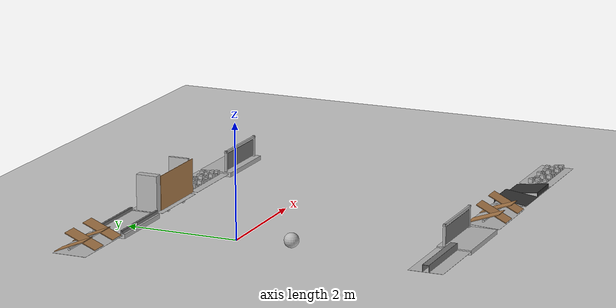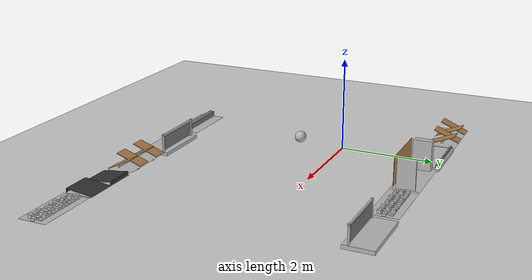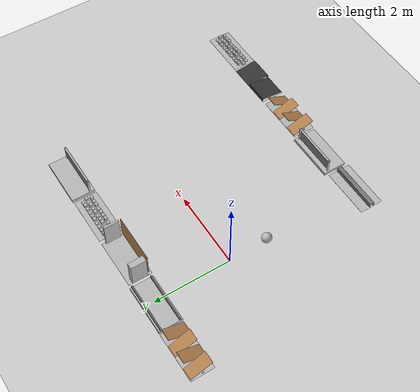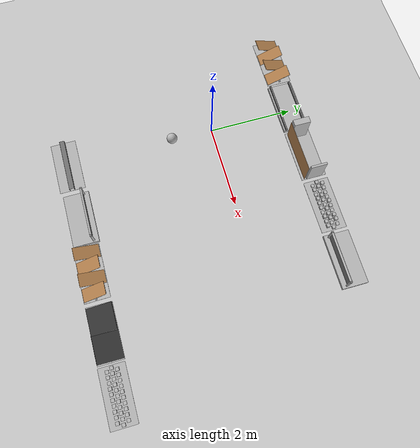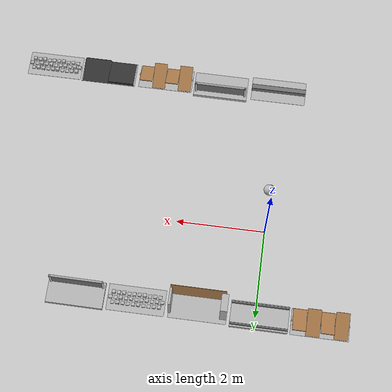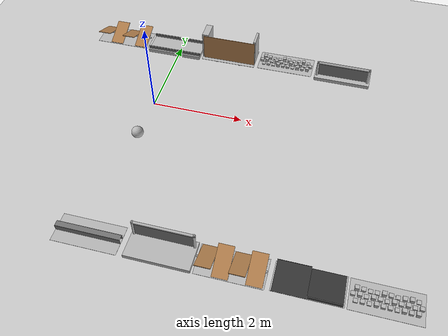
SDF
<sdf version="1.4">
 <world name="default">
  <light name="sun" type="directional">
   <pose>0 0 10 0 -0 0</pose>
   <diffuse>0.8 0.8 0.8 1</diffuse>
   <specular>0.2 0.2 0.2 1</specular>
   <attenuation>
    <range>1000</range>
    <constant>0.9</constant>
    <linear>0.01</linear>
    <quadratic>0.001</quadratic>
   </attenuation>
   <direction>-0.5 0.1 -0.9</direction>
  </light>
  <model name="ground_plane">
   <static>1</static>
   <link name="link">
    <collision name="collision">
     <geometry><plane><normal>0 0 1</normal><size>100 100</size></plane></geometry>
     <surface><friction><ode><mu>100</mu><mu2>50</mu2></ode></friction></surface>
    </collision>
    <visual name="visual">
     <cast_shadows>0</cast_shadows>
     <geometry><plane><normal>0 0 1</normal><size>100 100</size></plane></geometry>
     <material>
      <script><uri>file://media/materials/scripts/gazebo.material</uri><name>Gazebo/Grey</name></script>
     </material>
    </visual>
    <velocity_decay><linear>0</linear><angular>0</angular></velocity_decay>
   </link>
  </model>
  <physics type="ode">
   <max_step_size>0.001</max_step_size>
   <real_time_factor>1</real_time_factor>
   <real_time_update_rate>1000</real_time_update_rate>
   <gravity>0 0 -9.8</gravity>
  </physics>
  <scene><ambient>0.4 0.4 0.4 1</ambient><background>0.7 0.7 0.7 1</background><shadows>1</shadows></scene>
  <spherical_coordinates>
   <surface_model>EARTH_WGS84</surface_model>
   <latitude_deg>0</latitude_deg>
   <longitude_deg>0</longitude_deg>
   <elevation>0</elevation>
   <heading_deg>0</heading_deg>
  </spherical_coordinates>
  <model name="frc2016_roughterrain">
   <static>1</static>
   <link name="link">
    <visual name="platform">
     <pose>0 0 0.08269 0 -0 0</pose>
     <geometry><box><size>1.27 0.5969 0.003175</size></box></geometry>
    </visual>
    <collision name="platform">
     <pose>0 0 0.08269 0 -0 0</pose>
     <geometry><box><size>1.27 0.5969 0.003175</size></box></geometry>
    </collision>
    <visual name="row1_block1_sm">
     <pose>0.51435 0.1143 0.09698 0 -0 0</pose>
     <geometry><box><size>0.0762 0.0762 0.0254</size></box></geometry>
    </visual>
    <collision name="row1_block1_sm">
     <pose>0.51435 0.1143 0.09698 0 -0 0</pose>
     <geometry><box><size>0.0762 0.0762 0.0254</size></box></geometry>
    </collision>
    <visual name="row1_block2_lg">
     <pose>0.40005 0.1143 0.12238 0 -0 0</pose>
     <geometry><box><size>0.0762 0.0762 0.0762</size></box></geometry>
    </visual>
    <collision name="row1_block2_lg">
     <pose>0.40005 0.1143 0.12238 0 -0 0</pose>
     <geometry><box><size>0.0762 0.0762 0.0762</size></box></geometry>
    </collision>
    <visual name="row1_block3_md">
     <pose>0.28575 0.1143 0.10968 0 -0 0</pose>
     <geometry><box><size>0.0762 0.0762 0.0508</size></box></geometry>
    </visual>
    <collision name="row1_block3_md">
     <pose>0.28575 0.1143 0.10968 0 -0 0</pose>
     <geometry><box><size>0.0762 0.0762 0.0508</size></box></geometry>
    </collision>
    <visual name="row1_block4_sm">
     <pose>0.17145 0.1143 0.09698 0 -0 0</pose>
     <geometry><box><size>0.0762 0.0762 0.0254</size></box></geometry>
    </visual>
    <collision name="row1_block4_sm">
     <pose>0.17145 0.1143 0.09698 0 -0 0</pose>
     <geometry><box><size>0.0762 0.0762 0.0254</size></box></geometry>
    </collision>
    <visual name="row1_block5_md">
     <pose>0.05715 0.1143 0.10968 0 -0 0</pose>
     <geometry><box><size>0.0762 0.0762 0.0508</size></box></geometry>
    </visual>
    <collision name="row1_block5_md">
     <pose>0.05715 0.1143 0.10968 0 -0 0</pose>
     <geometry><box><size>0.0762 0.0762 0.0508</size></box></geometry>
    </collision>
    <visual name="row1_block6_lg">
     <pose>-0.05715 0.1143 0.12238 0 -0 0</pose>
     <geometry><box><size>0.0762 0.0762 0.0762</size></box></geometry>
    </visual>
    <collision name="row1_block6_lg">
     <pose>-0.05715 0.1143 0.12238 0 -0 0</pose>
     <geometry><box><size>0.0762 0.0762 0.0762</size></box></geometry>
    </collision>
    <visual name="row1_block7_sm">
     <pose>-0.17145 0.1143 0.09698 0 -0 0</pose>
     <geometry><box><size>0.0762 0.0762 0.0254</size></box></geometry>
    </visual>
    <collision name="row1_block7_sm">
     <pose>-0.17145 0.1143 0.09698 0 -0 0</pose>
     <geometry><box><size>0.0762 0.0762 0.0254</size></box></geometry>
    </collision>
    <visual name="row1_block8_sm">
     <pose>-0.28575 0.1143 0.09698 0 -0 0</pose>
     <geometry><box><size>0.0762 0.0762 0.0254</size></box></geometry>
    </visual>
    <collision name="row1_block8_sm">
     <pose>-0.28575 0.1143 0.09698 0 -0 0</pose>
     <geometry><box><size>0.0762 0.0762 0.0254</size></box></geometry>
    </collision>
    <visual name="row1_block9_md">
     <pose>-0.40005 0.1143 0.10968 0 -0 0</pose>
     <geometry><box><size>0.0762 0.0762 0.0508</size></box></geometry>
    </visual>
    <collision name="row1_block9_md">
     <pose>-0.40005 0.1143 0.10968 0 -0 0</pose>
     <geometry><box><size>0.0762 0.0762 0.0508</size></box></geometry>
    </collision>
    <visual name="row1_block10_lg">
     <pose>-0.51435 0.1143 0.12238 0 -0 0</pose>
     <geometry><box><size>0.0762 0.0762 0.0762</size></box></geometry>
    </visual>
    <collision name="row1_block10_lg">
     <pose>-0.51435 0.1143 0.12238 0 -0 0</pose>
     <geometry><box><size>0.0762 0.0762 0.0762</size></box></geometry>
    </collision>
    <visual name="row2_block1_md">
     <pose>0.5715 0 0.10968 0 -0 0</pose>
     <geometry><box><size>0.0762 0.0762 0.0508</size></box></geometry>
    </visual>
    <collision name="row2_block1_md">
     <pose>0.5715 0 0.10968 0 -0 0</pose>
     <geometry><box><size>0.0762 0.0762 0.0508</size></box></geometry>
    </collision>
    <visual name="row2_block2_sm">
     <pose>0.4572 0 0.09698 0 -0 0</pose>
     <geometry><box><size>0.0762 0.0762 0.0254</size></box></geometry>
    </visual>
    <collision name="row2_block2_sm">
     <pose>0.4572 0 0.09698 0 -0 0</pose>
     <geometry><box><size>0.0762 0.0762 0.0254</size></box></geometry>
    </collision>
    <visual name="row2_block3_lg">
     <pose>0.3429 0 0.12238 0 -0 0</pose>
     <geometry><box><size>0.0762 0.0762 0.0762</size></box></geometry>
    </visual>
    <collision name="row2_block3_lg">
     <pose>0.3429 0 0.12238 0 -0 0</pose>
     <geometry><box><size>0.0762 0.0762 0.0762</size></box></geometry>
    </collision>
    <visual name="row2_block4_md">
     <pose>0.2286 0 0.10968 0 -0 0</pose>
     <geometry><box><size>0.0762 0.0762 0.0508</size></box></geometry>
    </visual>
    <collision name="row2_block4_md">
     <pose>0.2286 0 0.10968 0 -0 0</pose>
     <geometry><box><size>0.0762 0.0762 0.0508</size></box></geometry>
    </collision>
    <visual name="row2_block5_lg">
     <pose>0.1143 0 0.12238 0 -0 0</pose>
     <geometry><box><size>0.0762 0.0762 0.0762</size></box></geometry>
    </visual>
    <collision name="row2_block5_lg">
     <pose>0.1143 0 0.12238 0 -0 0</pose>
     <geometry><box><size>0.0762 0.0762 0.0762</size></box></geometry>
    </collision>
    <visual name="row2_block6_sm">
     <pose>0 0 0.09698 0 -0 0</pose>
     <geometry><box><size>0.0762 0.0762 0.0254</size></box></geometry>
    </visual>
    <collision name="row2_block6_sm">
     <pose>0 0 0.09698 0 -0 0</pose>
     <geometry><box><size>0.0762 0.0762 0.0254</size></box></geometry>
    </collision>
    <visual name="row2_block7_md">
     <pose>-0.1143 0 0.10968 0 -0 0</pose>
     <geometry><box><size>0.0762 0.0762 0.0508</size></box></geometry>
    </visual>
    <collision name="row2_block7_md">
     <pose>-0.1143 0 0.10968 0 -0 0</pose>
     <geometry><box><size>0.0762 0.0762 0.0508</size></box></geometry>
    </collision>
    <visual name="row2_block8_lg">
     <pose>-0.2286 0 0.12238 0 -0 0</pose>
     <geometry><box><size>0.0762 0.0762 0.0762</size></box></geometry>
    </visual>
    <collision name="row2_block8_lg">
     <pose>-0.2286 0 0.12238 0 -0 0</pose>
     <geometry><box><size>0.0762 0.0762 0.0762</size></box></geometry>
    </collision>
    <visual name="row2_block9_sm">
     <pose>-0.3429 0 0.09698 0 -0 0</pose>
     <geometry><box><size>0.0762 0.0762 0.0254</size></box></geometry>
    </visual>
    <collision name="row2_block9_sm">
     <pose>-0.3429 0 0.09698 0 -0 0</pose>
     <geometry><box><size>0.0762 0.0762 0.0254</size></box></geometry>
    </collision>
    <visual name="row2_block10_lg">
     <pose>-0.4572 0 0.12238 0 -0 0</pose>
     <geometry><box><size>0.0762 0.0762 0.0762</size></box></geometry>
    </visual>
    <collision name="row2_block10_lg">
     <pose>-0.4572 0 0.12238 0 -0 0</pose>
     <geometry><box><size>0.0762 0.0762 0.0762</size></box></geometry>
    </collision>
    <visual name="row2_block11_md">
     <pose>-0.5715 0 0.10968 0 -0 0</pose>
     <geometry><box><size>0.0762 0.0762 0.0508</size></box></geometry>
    </visual>
    <collision name="row2_block11_md">
     <pose>-0.5715 0 0.10968 0 -0 0</pose>
     <geometry><box><size>0.0762 0.0762 0.0508</size></box></geometry>
    </collision>
    <visual name="row3_block1_lg">
     <pose>0.51435 -0.1143 0.12238 0 -0 0</pose>
     <geometry><box><size>0.0762 0.0762 0.0762</size></box></geometry>
    </visual>
    <collision name="row3_block1_lg">
     <pose>0.51435 -0.1143 0.12238 0 -0 0</pose>
     <geometry><box><size>0.0762 0.0762 0.0762</size></box></geometry>
    </collision>
    <visual name="row3_block2_md">
     <pose>0.40005 -0.1143 0.10968 0 -0 0</pose>
     <geometry><box><size>0.0762 0.0762 0.0508</size></box></geometry>
    </visual>
    <collision name="row3_block2_md">
     <pose>0.40005 -0.1143 0.10968 0 -0 0</pose>
     <geometry><box><size>0.0762 0.0762 0.0508</size></box></geometry>
    </collision>
    <visual name="row3_block3_lg">
     <pose>0.28575 -0.1143 0.12238 0 -0 0</pose>
     <geometry><box><size>0.0762 0.0762 0.0762</size></box></geometry>
    </visual>
    <collision name="row3_block3_lg">
     <pose>0.28575 -0.1143 0.12238 0 -0 0</pose>
     <geometry><box><size>0.0762 0.0762 0.0762</size></box></geometry>
    </collision>
    <visual name="row3_block4_sm">
     <pose>0.17145 -0.1143 0.09698 0 -0 0</pose>
     <geometry><box><size>0.0762 0.0762 0.0254</size></box></geometry>
    </visual>
    <collision name="row3_block4_sm">
     <pose>0.17145 -0.1143 0.09698 0 -0 0</pose>
     <geometry><box><size>0.0762 0.0762 0.0254</size></box></geometry>
    </collision>
    <visual name="row3_block5_md">
     <pose>0.05715 -0.1143 0.10968 0 -0 0</pose>
     <geometry><box><size>0.0762 0.0762 0.0508</size></box></geometry>
    </visual>
    <collision name="row3_block5_md">
     <pose>0.05715 -0.1143 0.10968 0 -0 0</pose>
     <geometry><box><size>0.0762 0.0762 0.0508</size></box></geometry>
    </collision>
    <visual name="row3_block6_md">
     <pose>-0.05715 -0.1143 0.10968 0 -0 0</pose>
     <geometry><box><size>0.0762 0.0762 0.0508</size></box></geometry>
    </visual>
    <collision name="row3_block6_md">
     <pose>-0.05715 -0.1143 0.10968 0 -0 0</pose>
     <geometry><box><size>0.0762 0.0762 0.0508</size></box></geometry>
    </collision>
    <visual name="row3_block7_lg">
     <pose>-0.17145 -0.1143 0.12238 0 -0 0</pose>
     <geometry><box><size>0.0762 0.0762 0.0762</size></box></geometry>
    </visual>
    <collision name="row3_block7_lg">
     <pose>-0.17145 -0.1143 0.12238 0 -0 0</pose>
     <geometry><box><size>0.0762 0.0762 0.0762</size></box></geometry>
    </collision>
    <visual name="row3_block8_sm">
     <pose>-0.28575 -0.1143 0.09698 0 -0 0</pose>
     <geometry><box><size>0.0762 0.0762 0.0254</size></box></geometry>
    </visual>
    <collision name="row3_block8_sm">
     <pose>-0.28575 -0.1143 0.09698 0 -0 0</pose>
     <geometry><box><size>0.0762 0.0762 0.0254</size></box></geometry>
    </collision>
    <visual name="row3_block9_md">
     <pose>-0.40005 -0.1143 0.10968 0 -0 0</pose>
     <geometry><box><size>0.0762 0.0762 0.0508</size></box></geometry>
    </visual>
    <collision name="row3_block9_md">
     <pose>-0.40005 -0.1143 0.10968 0 -0 0</pose>
     <geometry><box><size>0.0762 0.0762 0.0508</size></box></geometry>
    </collision>
    <visual name="row3_block10_sm">
     <pose>-0.51435 -0.1143 0.09698 0 -0 0</pose>
     <geometry><box><size>0.0762 0.0762 0.0254</size></box></geometry>
    </visual>
    <collision name="row3_block10_sm">
     <pose>-0.51435 -0.1143 0.09698 0 -0 0</pose>
     <geometry><box><size>0.0762 0.0762 0.0254</size></box></geometry>
    </collision>
    <velocity_decay><linear>0</linear><angular>0</angular></velocity_decay>
   </link>
   <pose>5.39148 -3.56537 0.010395 0 -0 0</pose>
  </model>
  <model name="frc2016_ramparts">
   <static>1</static>
   <link name="link">
    <visual name="platform">
     <pose>0 0 0.06967 0 -0 0</pose>
     <geometry><box><size>1.27 0.5969 0.003175</size></box></geometry>
    </visual>
    <collision name="platform">
     <pose>0 0 0.06967 0 -0 0</pose>
     <geometry><box><size>1.27 0.5969 0.003175</size></box></geometry>
    </collision>
    <visual name="ramp1">
     <pose>0.30472 0.00588 0.1109 -0.13 0 0</pose>
     <geometry><box><size>0.60957 0.588891 0.00462</size></box></geometry>
     <material><ambient>0.2 0.2 0.2 1</ambient><diffuse>0.2 0.2 0.2 1</diffuse></material>
    </visual>
    <collision name="ramp1">
     <pose>0.30472 0.00588 0.1109 -0.13 0 0</pose>
     <geometry><box><size>0.60957 0.588891 0.00462</size></box></geometry>
    </collision>
    <visual name="up1">
     <pose>0.30472 -0.28806 0.11072 0 -0 0</pose>
     <geometry><box><size>0.60957 0.00462 0.07872</size></box></geometry>
     <material><ambient>0.2 0.2 0.2 1</ambient><diffuse>0.2 0.2 0.2 1</diffuse></material>
    </visual>
    <collision name="up1">
     <pose>0.30472 -0.28806 0.11072 0 -0 0</pose>
     <geometry><box><size>0.60957 0.00462 0.07872</size></box></geometry>
    </collision>
    <visual name="ramp2">
     <pose>-0.30472 -0.00619 0.1109 0.13 -0 0</pose>
     <geometry><box><size>0.60957 0.588891 0.00462</size></box></geometry>
     <material><ambient>0.2 0.2 0.2 1</ambient><diffuse>0.2 0.2 0.2 1</diffuse></material>
    </visual>
    <collision name="ramp2">
     <pose>-0.30472 -0.00619 0.1109 0.13 -0 0</pose>
     <geometry><box><size>0.60957 0.588891 0.00462</size></box></geometry>
    </collision>
    <visual name="up2">
     <pose>-0.30472 0.28806 0.11072 0 -0 0</pose>
     <geometry><box><size>0.60957 0.00462 0.07872</size></box></geometry>
     <material><ambient>0.2 0.2 0.2 1</ambient><diffuse>0.2 0.2 0.2 1</diffuse></material>
    </visual>
    <collision name="up2">
     <pose>-0.30472 0.28806 0.11072 0 -0 0</pose>
     <geometry><box><size>0.60957 0.00462 0.07872</size></box></geometry>
    </collision>
    <velocity_decay><linear>0</linear><angular>0</angular></velocity_decay>
   </link>
   <pose>4.0838 -3.55444 0.015468 0 -0 0</pose>
  </model>
  <model name="frc2016_lowbar">
   <link name="base">
    <inertial>
     <mass>50</mass>
     <inertia>
      <ixx>0.035543</ixx>
      <ixy>0</ixy>
      <ixz>0</ixz>
      <iyy>0.134412</iyy>
      <iyz>0</iyz>
      <izz>0.165376</izz>
     </inertia>
    </inertial>
    <visual name="platform">
     <pose>0 0 0.039065 0 -0 0</pose>
     <geometry><box><size>1.26 0.5996 0.07813</size></box></geometry>
    </visual>
    <collision name="platform">
     <pose>0 0 0.039065 0 -0 0</pose>
     <geometry><box><size>1.27 0.6096 0.07813</size></box></geometry>
    </collision>
    <visual name="right_column">
     <pose>-0.57845 -0.18464 0.26863 0 -0 0</pose>
     <geometry><cylinder><radius>0.0254</radius><length>0.381</length></cylinder></geometry>
    </visual>
    <collision name="right_column">
     <pose>-0.57845 -0.18464 0.26863 0 -0 0</pose>
     <geometry><cylinder><radius>0.0254</radius><length>0.381</length></cylinder></geometry>
    </collision>
    <visual name="left_column">
     <pose>0.57845 -0.18464 0.26863 0 -0 0</pose>
     <geometry><cylinder><radius>0.0254</radius><length>0.381</length></cylinder></geometry>
    </visual>
    <collision name="left_column">
     <pose>0.57845 -0.18464 0.26863 0 -0 0</pose>
     <geometry><cylinder><radius>0.0254</radius><length>0.381</length></cylinder></geometry>
    </collision>
    <visual name="horizontal">
     <pose>0 -0.18464 0.43556 0 1.5707 0</pose>
     <geometry><cylinder><radius>0.0254</radius><length>1.2018</length></cylinder></geometry>
    </visual>
    <collision name="horizontal">
     <pose>0 -0.18464 0.43556 0 1.5707 0</pose>
     <geometry><cylinder><radius>0.0254</radius><length>1.2018</length></cylinder></geometry>
    </collision>
    <velocity_decay><linear>0</linear><angular>0</angular></velocity_decay>
   </link>
   <link name="wall">
    <pose>0 -0.1778 0.24323 0 -0 0</pose>
    <inertial>
     <mass>1</mass>
     <inertia>
      <ixx>0.00774528</ixx>
      <ixy>0</ixy>
      <ixz>0</ixz>
      <iyy>0.116613</iyy>
      <iyz>0</iyz>
      <izz>0.108874</izz>
     </inertia>
    </inertial>
    <visual name="visual">
     <geometry><box><size>1.1176 0.00635 0.3</size></box></geometry>
     <material><ambient>0.46 0.46 0.46 1</ambient><diffuse>0.46 0.46 0.46 1</diffuse></material>
    </visual>
    <collision name="collision"><geometry><box><size>1.143 0.00635 0.3</size></box></geometry></collision>
    <velocity_decay><linear>0</linear><angular>0</angular></velocity_decay>
   </link>
   <joint name="bar_joint" type="revolute">
    <pose>0 0 0.36378 0 -0 0</pose>
    <parent>base</parent>
    <child>wall</child>
    <axis><xyz>1 0 0</xyz><limit><lower>-1.5707</lower><upper>1.5707</upper></limit></axis>
   </joint>
   <pose>3.95335 1.97511 0.020855 -4.7e-05 -5.29396e-23 -0.005504</pose>
   <static>0</static>
  </model>
  <model name="frc2016_lowbar_0">
   <link name="base">
    <inertial>
     <mass>50</mass>
     <inertia>
      <ixx>0.035543</ixx>
      <ixy>0</ixy>
      <ixz>0</ixz>
      <iyy>0.134412</iyy>
      <iyz>0</iyz>
      <izz>0.165376</izz>
     </inertia>
    </inertial>
    <visual name="platform">
     <pose>0 0 0.039065 0 -0 0</pose>
     <geometry><box><size>1.26 0.5996 0.07813</size></box></geometry>
    </visual>
    <collision name="platform">
     <pose>0 0 0.039065 0 -0 0</pose>
     <geometry><box><size>1.27 0.6096 0.07813</size></box></geometry>
    </collision>
    <visual name="right_column">
     <pose>-0.57845 -0.18464 0.26863 0 -0 0</pose>
     <geometry><cylinder><radius>0.0254</radius><length>0.381</length></cylinder></geometry>
    </visual>
    <collision name="right_column">
     <pose>-0.57845 -0.18464 0.26863 0 -0 0</pose>
     <geometry><cylinder><radius>0.0254</radius><length>0.381</length></cylinder></geometry>
    </collision>
    <visual name="left_column">
     <pose>0.57845 -0.18464 0.26863 0 -0 0</pose>
     <geometry><cylinder><radius>0.0254</radius><length>0.381</length></cylinder></geometry>
    </visual>
    <collision name="left_column">
     <pose>0.57845 -0.18464 0.26863 0 -0 0</pose>
     <geometry><cylinder><radius>0.0254</radius><length>0.381</length></cylinder></geometry>
    </collision>
    <visual name="horizontal">
     <pose>0 -0.18464 0.43556 0 1.5707 0</pose>
     <geometry><cylinder><radius>0.0254</radius><length>1.2018</length></cylinder></geometry>
    </visual>
    <collision name="horizontal">
     <pose>0 -0.18464 0.43556 0 1.5707 0</pose>
     <geometry><cylinder><radius>0.0254</radius><length>1.2018</length></cylinder></geometry>
    </collision>
    <velocity_decay><linear>0</linear><angular>0</angular></velocity_decay>
   </link>
   <link name="wall">
    <pose>0 -0.1778 0.24323 0 -0 0</pose>
    <inertial>
     <mass>1</mass>
     <inertia>
      <ixx>0.00774528</ixx>
      <ixy>0</ixy>
      <ixz>0</ixz>
      <iyy>0.116613</iyy>
      <iyz>0</iyz>
      <izz>0.108874</izz>
     </inertia>
    </inertial>
    <visual name="visual">
     <geometry><box><size>1.1176 0.00635 0.3</size></box></geometry>
     <material><ambient>0.46 0.46 0.46 1</ambient><diffuse>0.46 0.46 0.46 1</diffuse></material>
    </visual>
    <collision name="collision"><geometry><box><size>1.143 0.00635 0.3</size></box></geometry></collision>
    <velocity_decay><linear>0</linear><angular>0</angular></velocity_decay>
   </link>
   <joint name="bar_joint" type="revolute">
    <pose>0 0 0.36378 0 -0 0</pose>
    <parent>base</parent>
    <child>wall</child>
    <axis><xyz>1 0 0</xyz><limit><lower>-1.5707</lower><upper>1.5707</upper></limit></axis>
   </joint>
   <pose>1.40485 -3.53672 -6e-06 9e-06 1.4e-05 3.13948</pose>
   <static>0</static>
  </model>
  <model name="frc2016_ball">
   <pose>0 -1 0.127 0 -0 0</pose>
   <link name="link">
    <inertial>
     <mass>0.213</mass>
     <inertia>
      <ixx>0.00322667</ixx>
      <ixy>0</ixy>
      <ixz>0</ixz>
      <iyy>0.00322667</iyy>
      <iyz>0</iyz>
      <izz>0.00322667</izz>
     </inertia>
    </inertial>
    <visual name="visual"><geometry><sphere><radius>0.127</radius></sphere></geometry></visual>
    <collision name="collision">
     <geometry><sphere><radius>0.127</radius></sphere></geometry>
     <surface>
      <bounce><restitution_coefficient>0.15937</restitution_coefficient><threshold>0</threshold></bounce>
      <contact><ode><max_vel>100</max_vel><min_depth>0.001</min_depth></ode></contact>
     </surface>
    </collision>
    <velocity_decay><linear>0</linear><angular>0</angular></velocity_decay>
   </link>
   <static>0</static>
  </model>
  <model name="frc2016_chevaldefrise">
   <link name="base">
    <inertial>
     <mass>10</mass>
     <pose>0 0 0.15672 0 -0 0</pose>
     <inertia><ixx>0.380221</ixx><ixy>0</ixy><ixz>0</ixz><iyy>1.43365</iyy><iyz>0</iyz><izz>1.64745</izz></inertia>
    </inertial>
    <visual name="platform">
     <pose>0 0 0.06968 0 -0 0</pose>
     <geometry><box><size>1.27 0.5969 0.003175</size></box></geometry>
    </visual>
    <collision name="platform">
     <pose>0 0 0.06968 0 -0 0</pose>
     <geometry><box><size>1.27 0.5969 0.003175</size></box></geometry>
    </collision>
    <visual name="bar">
     <pose>0 0 0.16855 0 1.5707 0</pose>
     <geometry><cylinder><radius>0.02108</radius><length>1.273</length></cylinder></geometry>
    </visual>
    <collision name="bar">
     <pose>0 0 0.16855 0 1.5707 0</pose>
     <geometry><cylinder><radius>0.02108</radius><length>1.27</length></cylinder></geometry>
    </collision>
    <visual name="castor1">
     <pose>-0.45653 -0.16581 0.03175 0 -0 0</pose>
     <geometry><sphere><radius>0.03175</radius></sphere></geometry>
    </visual>
    <collision name="castor1">
     <pose>-0.45653 -0.16581 0.03175 0 -0 0</pose>
     <geometry><sphere><radius>0.03175</radius></sphere></geometry>
    </collision>
    <visual name="castor2">
     <pose>-0.27855 0.21408 0.03175 0 -0 0</pose>
     <geometry><sphere><radius>0.03175</radius></sphere></geometry>
    </visual>
    <collision name="castor2">
     <pose>-0.27855 0.21408 0.03175 0 -0 0</pose>
     <geometry><sphere><radius>0.03175</radius></sphere></geometry>
    </collision>
    <visual name="castor3">
     <pose>0.28191 0.21419 0.03175 0 -0 0</pose>
     <geometry><sphere><radius>0.03175</radius></sphere></geometry>
    </visual>
    <collision name="castor3">
     <pose>0.28191 0.21419 0.03175 0 -0 0</pose>
     <geometry><sphere><radius>0.03175</radius></sphere></geometry>
    </collision>
    <visual name="castor4">
     <pose>0.45965 -0.16602 0.03175 0 -0 0</pose>
     <geometry><sphere><radius>0.03175</radius></sphere></geometry>
    </visual>
    <collision name="castor4">
     <pose>0.45965 -0.16602 0.03175 0 -0 0</pose>
     <geometry><sphere><radius>0.03175</radius></sphere></geometry>
    </collision>
    <velocity_decay><linear>0</linear><angular>0</angular></velocity_decay>
   </link>
   <link name="slant1">
    <pose>-0.4572 0.01307 0.1997 -0.39732 0 0</pose>
    <inertial>
     <pose>0 0.1 0 0 -0 0</pose>
     <mass>2</mass>
     <inertia>
      <ixx>0.0606857</ixx>
      <ixy>0</ixy>
      <ixz>0</ixz>
      <iyy>0.0148723</iyy>
      <iyz>0</iyz>
      <izz>0.0755042</izz>
     </inertia>
    </inertial>
    <visual name="visual">
     <geometry><box><size>0.29845 0.593285 0.0127</size></box></geometry>
     <material><script><name>Gazebo/WoodFloor</name><uri>__default__</uri></script></material>
    </visual>
    <collision name="collision"><geometry><box><size>0.29845 0.593285 0.0127</size></box></geometry></collision>
    <velocity_decay><linear>0</linear><angular>0</angular></velocity_decay>
   </link>
   <link name="slant2">
    <pose>-0.1524 -0.01307 0.1997 0.39732 -0 0</pose>
    <inertial>
     <mass>2</mass>
     <pose>0 -0.1 0 0 -0 0</pose>
     <inertia>
      <ixx>0.0606857</ixx>
      <ixy>0</ixy>
      <ixz>0</ixz>
      <iyy>0.0148723</iyy>
      <iyz>0</iyz>
      <izz>0.0755042</izz>
     </inertia>
    </inertial>
    <visual name="visual">
     <geometry><box><size>0.29845 0.593285 0.0127</size></box></geometry>
     <material><script><name>Gazebo/WoodFloor</name><uri>__default__</uri></script></material>
    </visual>
    <collision name="collision"><geometry><box><size>0.29845 0.593285 0.0127</size></box></geometry></collision>
    <velocity_decay><linear>0</linear><angular>0</angular></velocity_decay>
   </link>
   <link name="slant3">
    <pose>0.1524 0.01307 0.1997 -0.39732 0 0</pose>
    <inertial>
     <pose>0 0.1 0 0 -0 0</pose>
     <mass>2</mass>
     <inertia>
      <ixx>0.0606857</ixx>
      <ixy>0</ixy>
      <ixz>0</ixz>
      <iyy>0.0148723</iyy>
      <iyz>0</iyz>
      <izz>0.0755042</izz>
     </inertia>
    </inertial>
    <visual name="visual">
     <geometry><box><size>0.29845 0.593285 0.0127</size></box></geometry>
     <material><script><name>Gazebo/WoodFloor</name><uri>__default__</uri></script></material>
    </visual>
    <collision name="collision"><geometry><box><size>0.29845 0.593285 0.0127</size></box></geometry></collision>
    <velocity_decay><linear>0</linear><angular>0</angular></velocity_decay>
   </link>
   <link name="slant4">
    <pose>0.4572 -0.01307 0.1997 0.39732 -0 0</pose>
    <inertial>
     <pose>0 -0.1 0 0 -0 0</pose>
     <mass>2</mass>
     <inertia>
      <ixx>0.0606857</ixx>
      <ixy>0</ixy>
      <ixz>0</ixz>
      <iyy>0.0148723</iyy>
      <iyz>0</iyz>
      <izz>0.0755042</izz>
     </inertia>
    </inertial>
    <visual name="visual">
     <geometry><box><size>0.29845 0.593285 0.0127</size></box></geometry>
     <material><script><name>Gazebo/WoodFloor</name><uri>__default__</uri></script></material>
    </visual>
    <collision name="collision"><geometry><box><size>0.29845 0.593285 0.0127</size></box></geometry></collision>
    <velocity_decay><linear>0</linear><angular>0</angular></velocity_decay>
   </link>
   <joint name="slant1_joint" type="revolute">
    <parent>base</parent>
    <child>slant1</child>
    <axis><xyz>1 0 0</xyz><limit><lower>0</lower><upper>1.5707</upper></limit></axis>
   </joint>
   <joint name="slant2_joint" type="revolute">
    <parent>base</parent>
    <child>slant2</child>
    <axis><xyz>1 0 0</xyz><limit><lower>-1.5707</lower><upper>0</upper></limit></axis>
   </joint>
   <joint name="slant3_joint" type="revolute">
    <parent>base</parent>
    <child>slant3</child>
    <axis><xyz>1 0 0</xyz><limit><lower>0</lower><upper>1.5707</upper></limit></axis>
   </joint>
   <joint name="slant4_joint" type="revolute">
    <parent>base</parent>
    <child>slant4</child>
    <axis><xyz>1 0 0</xyz><limit><lower>-1.5707</lower><upper>0</upper></limit></axis>
   </joint>
   <pose>2.72134 -3.55743 0.009315 0.055839 -0 -1.3e-05</pose>
   <static>0</static>
  </model>
  <model name="frc2016_rockwall">
   <static>1</static>
   <link name="link">
    <inertial>
     <mass>10</mass>
     <pose>0 0 0.08974 0 -0 0</pose>
     <inertia><ixx>0.327091</ixx><ixy>0</ixy><ixz>0</ixz><iyy>1.37417</iyy><iyz>0</iyz><izz>1.64109</izz></inertia>
    </inertial>
    <visual name="platform">
     <pose>0 0 0.06432 0 -0 0</pose>
     <geometry><box><size>1.27 0.5969 0.003175</size></box></geometry>
    </visual>
    <collision name="platform">
     <pose>0 0 0.06432 0 -0 0</pose>
     <geometry><box><size>1.27 0.5969 0.003175</size></box></geometry>
    </collision>
    <visual name="up1">
     <pose>0 0.05166 0.12537 0 -0 0</pose>
     <geometry><box><size>1.27 0.00462 0.11892</size></box></geometry>
     <material><ambient>0.46 0.46 0.46 1</ambient><diffuse>0.46 0.46 0.46 1</diffuse></material>
    </visual>
    <collision name="up1">
     <pose>0 0.05166 0.12537 0 -0 0</pose>
     <geometry><box><size>1.27 0.00462 0.11892</size></box></geometry>
    </collision>
    <visual name="up2">
     <pose>0 -0.05801 0.12537 0 -0 0</pose>
     <geometry><box><size>1.27 0.00462 0.11892</size></box></geometry>
     <material><ambient>0.46 0.46 0.46 1</ambient><diffuse>0.46 0.46 0.46 1</diffuse></material>
    </visual>
    <collision name="up2">
     <pose>0 -0.05801 0.12537 0 -0 0</pose>
     <geometry><box><size>1.27 0.00462 0.11892</size></box></geometry>
    </collision>
    <visual name="top">
     <pose>0 -0.00249 0.18252 0 -0 0</pose>
     <geometry><box><size>1.27 0.1143 0.00462</size></box></geometry>
     <material><ambient>0.46 0.46 0.46 1</ambient><diffuse>0.46 0.46 0.46 1</diffuse></material>
    </visual>
    <collision name="top">
     <pose>0 -0.00249 0.18252 0 -0 0</pose>
     <geometry><box><size>1.27 0.1143 0.00462</size></box></geometry>
    </collision>
    <velocity_decay><linear>0</linear><angular>0</angular></velocity_decay>
   </link>
   <pose>0.037752 -3.57642 0.025492 0 -0 0</pose>
  </model>
  <model name="frc2016_roughterrain_0">
   <static>1</static>
   <link name="link">
    <visual name="platform">
     <pose>0 0 0.08269 0 -0 0</pose>
     <geometry><box><size>1.27 0.5969 0.003175</size></box></geometry>
    </visual>
    <collision name="platform">
     <pose>0 0 0.08269 0 -0 0</pose>
     <geometry><box><size>1.27 0.5969 0.003175</size></box></geometry>
    </collision>
    <visual name="row1_block1_sm">
     <pose>0.51435 0.1143 0.09698 0 -0 0</pose>
     <geometry><box><size>0.0762 0.0762 0.0254</size></box></geometry>
    </visual>
    <collision name="row1_block1_sm">
     <pose>0.51435 0.1143 0.09698 0 -0 0</pose>
     <geometry><box><size>0.0762 0.0762 0.0254</size></box></geometry>
    </collision>
    <visual name="row1_block2_lg">
     <pose>0.40005 0.1143 0.12238 0 -0 0</pose>
     <geometry><box><size>0.0762 0.0762 0.0762</size></box></geometry>
    </visual>
    <collision name="row1_block2_lg">
     <pose>0.40005 0.1143 0.12238 0 -0 0</pose>
     <geometry><box><size>0.0762 0.0762 0.0762</size></box></geometry>
    </collision>
    <visual name="row1_block3_md">
     <pose>0.28575 0.1143 0.10968 0 -0 0</pose>
     <geometry><box><size>0.0762 0.0762 0.0508</size></box></geometry>
    </visual>
    <collision name="row1_block3_md">
     <pose>0.28575 0.1143 0.10968 0 -0 0</pose>
     <geometry><box><size>0.0762 0.0762 0.0508</size></box></geometry>
    </collision>
    <visual name="row1_block4_sm">
     <pose>0.17145 0.1143 0.09698 0 -0 0</pose>
     <geometry><box><size>0.0762 0.0762 0.0254</size></box></geometry>
    </visual>
    <collision name="row1_block4_sm">
     <pose>0.17145 0.1143 0.09698 0 -0 0</pose>
     <geometry><box><size>0.0762 0.0762 0.0254</size></box></geometry>
    </collision>
    <visual name="row1_block5_md">
     <pose>0.05715 0.1143 0.10968 0 -0 0</pose>
     <geometry><box><size>0.0762 0.0762 0.0508</size></box></geometry>
    </visual>
    <collision name="row1_block5_md">
     <pose>0.05715 0.1143 0.10968 0 -0 0</pose>
     <geometry><box><size>0.0762 0.0762 0.0508</size></box></geometry>
    </collision>
    <visual name="row1_block6_lg">
     <pose>-0.05715 0.1143 0.12238 0 -0 0</pose>
     <geometry><box><size>0.0762 0.0762 0.0762</size></box></geometry>
    </visual>
    <collision name="row1_block6_lg">
     <pose>-0.05715 0.1143 0.12238 0 -0 0</pose>
     <geometry><box><size>0.0762 0.0762 0.0762</size></box></geometry>
    </collision>
    <visual name="row1_block7_sm">
     <pose>-0.17145 0.1143 0.09698 0 -0 0</pose>
     <geometry><box><size>0.0762 0.0762 0.0254</size></box></geometry>
    </visual>
    <collision name="row1_block7_sm">
     <pose>-0.17145 0.1143 0.09698 0 -0 0</pose>
     <geometry><box><size>0.0762 0.0762 0.0254</size></box></geometry>
    </collision>
    <visual name="row1_block8_sm">
     <pose>-0.28575 0.1143 0.09698 0 -0 0</pose>
     <geometry><box><size>0.0762 0.0762 0.0254</size></box></geometry>
    </visual>
    <collision name="row1_block8_sm">
     <pose>-0.28575 0.1143 0.09698 0 -0 0</pose>
     <geometry><box><size>0.0762 0.0762 0.0254</size></box></geometry>
    </collision>
    <visual name="row1_block9_md">
     <pose>-0.40005 0.1143 0.10968 0 -0 0</pose>
     <geometry><box><size>0.0762 0.0762 0.0508</size></box></geometry>
    </visual>
    <collision name="row1_block9_md">
     <pose>-0.40005 0.1143 0.10968 0 -0 0</pose>
     <geometry><box><size>0.0762 0.0762 0.0508</size></box></geometry>
    </collision>
    <visual name="row1_block10_lg">
     <pose>-0.51435 0.1143 0.12238 0 -0 0</pose>
     <geometry><box><size>0.0762 0.0762 0.0762</size></box></geometry>
    </visual>
    <collision name="row1_block10_lg">
     <pose>-0.51435 0.1143 0.12238 0 -0 0</pose>
     <geometry><box><size>0.0762 0.0762 0.0762</size></box></geometry>
    </collision>
    <visual name="row2_block1_md">
     <pose>0.5715 0 0.10968 0 -0 0</pose>
     <geometry><box><size>0.0762 0.0762 0.0508</size></box></geometry>
    </visual>
    <collision name="row2_block1_md">
     <pose>0.5715 0 0.10968 0 -0 0</pose>
     <geometry><box><size>0.0762 0.0762 0.0508</size></box></geometry>
    </collision>
    <visual name="row2_block2_sm">
     <pose>0.4572 0 0.09698 0 -0 0</pose>
     <geometry><box><size>0.0762 0.0762 0.0254</size></box></geometry>
    </visual>
    <collision name="row2_block2_sm">
     <pose>0.4572 0 0.09698 0 -0 0</pose>
     <geometry><box><size>0.0762 0.0762 0.0254</size></box></geometry>
    </collision>
    <visual name="row2_block3_lg">
     <pose>0.3429 0 0.12238 0 -0 0</pose>
     <geometry><box><size>0.0762 0.0762 0.0762</size></box></geometry>
    </visual>
    <collision name="row2_block3_lg">
     <pose>0.3429 0 0.12238 0 -0 0</pose>
     <geometry><box><size>0.0762 0.0762 0.0762</size></box></geometry>
    </collision>
    <visual name="row2_block4_md">
     <pose>0.2286 0 0.10968 0 -0 0</pose>
     <geometry><box><size>0.0762 0.0762 0.0508</size></box></geometry>
    </visual>
    <collision name="row2_block4_md">
     <pose>0.2286 0 0.10968 0 -0 0</pose>
     <geometry><box><size>0.0762 0.0762 0.0508</size></box></geometry>
    </collision>
    <visual name="row2_block5_lg">
     <pose>0.1143 0 0.12238 0 -0 0</pose>
     <geometry><box><size>0.0762 0.0762 0.0762</size></box></geometry>
    </visual>
    <collision name="row2_block5_lg">
     <pose>0.1143 0 0.12238 0 -0 0</pose>
     <geometry><box><size>0.0762 0.0762 0.0762</size></box></geometry>
    </collision>
    <visual name="row2_block6_sm">
     <pose>0 0 0.09698 0 -0 0</pose>
     <geometry><box><size>0.0762 0.0762 0.0254</size></box></geometry>
    </visual>
    <collision name="row2_block6_sm">
     <pose>0 0 0.09698 0 -0 0</pose>
     <geometry><box><size>0.0762 0.0762 0.0254</size></box></geometry>
    </collision>
    <visual name="row2_block7_md">
     <pose>-0.1143 0 0.10968 0 -0 0</pose>
     <geometry><box><size>0.0762 0.0762 0.0508</size></box></geometry>
    </visual>
    <collision name="row2_block7_md">
     <pose>-0.1143 0 0.10968 0 -0 0</pose>
     <geometry><box><size>0.0762 0.0762 0.0508</size></box></geometry>
    </collision>
    <visual name="row2_block8_lg">
     <pose>-0.2286 0 0.12238 0 -0 0</pose>
     <geometry><box><size>0.0762 0.0762 0.0762</size></box></geometry>
    </visual>
    <collision name="row2_block8_lg">
     <pose>-0.2286 0 0.12238 0 -0 0</pose>
     <geometry><box><size>0.0762 0.0762 0.0762</size></box></geometry>
    </collision>
    <visual name="row2_block9_sm">
     <pose>-0.3429 0 0.09698 0 -0 0</pose>
     <geometry><box><size>0.0762 0.0762 0.0254</size></box></geometry>
    </visual>
    <collision name="row2_block9_sm">
     <pose>-0.3429 0 0.09698 0 -0 0</pose>
     <geometry><box><size>0.0762 0.0762 0.0254</size></box></geometry>
    </collision>
    <visual name="row2_block10_lg">
     <pose>-0.4572 0 0.12238 0 -0 0</pose>
     <geometry><box><size>0.0762 0.0762 0.0762</size></box></geometry>
    </visual>
    <collision name="row2_block10_lg">
     <pose>-0.4572 0 0.12238 0 -0 0</pose>
     <geometry><box><size>0.0762 0.0762 0.0762</size></box></geometry>
    </collision>
    <visual name="row2_block11_md">
     <pose>-0.5715 0 0.10968 0 -0 0</pose>
     <geometry><box><size>0.0762 0.0762 0.0508</size></box></geometry>
    </visual>
    <collision name="row2_block11_md">
     <pose>-0.5715 0 0.10968 0 -0 0</pose>
     <geometry><box><size>0.0762 0.0762 0.0508</size></box></geometry>
    </collision>
    <visual name="row3_block1_lg">
     <pose>0.51435 -0.1143 0.12238 0 -0 0</pose>
     <geometry><box><size>0.0762 0.0762 0.0762</size></box></geometry>
    </visual>
    <collision name="row3_block1_lg">
     <pose>0.51435 -0.1143 0.12238 0 -0 0</pose>
     <geometry><box><size>0.0762 0.0762 0.0762</size></box></geometry>
    </collision>
    <visual name="row3_block2_md">
     <pose>0.40005 -0.1143 0.10968 0 -0 0</pose>
     <geometry><box><size>0.0762 0.0762 0.0508</size></box></geometry>
    </visual>
    <collision name="row3_block2_md">
     <pose>0.40005 -0.1143 0.10968 0 -0 0</pose>
     <geometry><box><size>0.0762 0.0762 0.0508</size></box></geometry>
    </collision>
    <visual name="row3_block3_lg">
     <pose>0.28575 -0.1143 0.12238 0 -0 0</pose>
     <geometry><box><size>0.0762 0.0762 0.0762</size></box></geometry>
    </visual>
    <collision name="row3_block3_lg">
     <pose>0.28575 -0.1143 0.12238 0 -0 0</pose>
     <geometry><box><size>0.0762 0.0762 0.0762</size></box></geometry>
    </collision>
    <visual name="row3_block4_sm">
     <pose>0.17145 -0.1143 0.09698 0 -0 0</pose>
     <geometry><box><size>0.0762 0.0762 0.0254</size></box></geometry>
    </visual>
    <collision name="row3_block4_sm">
     <pose>0.17145 -0.1143 0.09698 0 -0 0</pose>
     <geometry><box><size>0.0762 0.0762 0.0254</size></box></geometry>
    </collision>
    <visual name="row3_block5_md">
     <pose>0.05715 -0.1143 0.10968 0 -0 0</pose>
     <geometry><box><size>0.0762 0.0762 0.0508</size></box></geometry>
    </visual>
    <collision name="row3_block5_md">
     <pose>0.05715 -0.1143 0.10968 0 -0 0</pose>
     <geometry><box><size>0.0762 0.0762 0.0508</size></box></geometry>
    </collision>
    <visual name="row3_block6_md">
     <pose>-0.05715 -0.1143 0.10968 0 -0 0</pose>
     <geometry><box><size>0.0762 0.0762 0.0508</size></box></geometry>
    </visual>
    <collision name="row3_block6_md">
     <pose>-0.05715 -0.1143 0.10968 0 -0 0</pose>
     <geometry><box><size>0.0762 0.0762 0.0508</size></box></geometry>
    </collision>
    <visual name="row3_block7_lg">
     <pose>-0.17145 -0.1143 0.12238 0 -0 0</pose>
     <geometry><box><size>0.0762 0.0762 0.0762</size></box></geometry>
    </visual>
    <collision name="row3_block7_lg">
     <pose>-0.17145 -0.1143 0.12238 0 -0 0</pose>
     <geometry><box><size>0.0762 0.0762 0.0762</size></box></geometry>
    </collision>
    <visual name="row3_block8_sm">
     <pose>-0.28575 -0.1143 0.09698 0 -0 0</pose>
     <geometry><box><size>0.0762 0.0762 0.0254</size></box></geometry>
    </visual>
    <collision name="row3_block8_sm">
     <pose>-0.28575 -0.1143 0.09698 0 -0 0</pose>
     <geometry><box><size>0.0762 0.0762 0.0254</size></box></geometry>
    </collision>
    <visual name="row3_block9_md">
     <pose>-0.40005 -0.1143 0.10968 0 -0 0</pose>
     <geometry><box><size>0.0762 0.0762 0.0508</size></box></geometry>
    </visual>
    <collision name="row3_block9_md">
     <pose>-0.40005 -0.1143 0.10968 0 -0 0</pose>
     <geometry><box><size>0.0762 0.0762 0.0508</size></box></geometry>
    </collision>
    <visual name="row3_block10_sm">
     <pose>-0.51435 -0.1143 0.09698 0 -0 0</pose>
     <geometry><box><size>0.0762 0.0762 0.0254</size></box></geometry>
    </visual>
    <collision name="row3_block10_sm">
     <pose>-0.51435 -0.1143 0.09698 0 -0 0</pose>
     <geometry><box><size>0.0762 0.0762 0.0254</size></box></geometry>
    </collision>
    <velocity_decay><linear>0</linear><angular>0</angular></velocity_decay>
   </link>
   <pose>2.6105 1.97445 0.014536 0 -0 0</pose>
  </model>
  <model name="frc2016_sallyport">
   <link name="base">
    <inertial>
     <mass>50</mass>
     <pose>0 0 0.35406 0 -0 0</pose>
     <inertia><ixx>0.727808</ixx><ixy>0</ixy><ixz>0</ixz><iyy>1.77488</iyy><iyz>0</iyz><izz>1.64109</izz></inertia>
    </inertial>
    <visual name="platform">
     <pose>0 0 0.06974 0 -0 0</pose>
     <geometry><box><size>1.27 0.5969 0.003175</size></box></geometry>
    </visual>
    <collision name="platform">
     <pose>0 0 0.06974 0 -0 0</pose>
     <geometry><box><size>1.27 0.5969 0.003175</size></box></geometry>
    </collision>
    <visual name="left_column">
     <pose>-0.5588 0.00318 0.38876 0 -0 0</pose>
     <geometry><box><size>0.1524 0.38735 0.635</size></box></geometry>
    </visual>
    <collision name="left_column">
     <pose>-0.5588 0.00318 0.38876 0 -0 0</pose>
     <geometry><box><size>0.1524 0.38735 0.635</size></box></geometry>
    </collision>
    <visual name="right_column">
     <pose>0.6096 0.00635 0.38876 0 -0 0</pose>
     <geometry><box><size>0.0508 0.381 0.635</size></box></geometry>
    </visual>
    <collision name="right_column">
     <pose>0.6096 0.00635 0.38876 0 -0 0</pose>
     <geometry><box><size>0.0508 0.381 0.635</size></box></geometry>
    </collision>
    <visual name="castor1">
     <pose>-0.45886 0.15389 0.03487 0 -0 0</pose>
     <geometry><sphere><radius>0.03487</radius></sphere></geometry>
    </visual>
    <collision name="castor1">
     <pose>-0.45886 0.15389 0.03487 0 -0 0</pose>
     <geometry><sphere><radius>0.03487</radius></sphere></geometry>
    </collision>
    <visual name="castor2">
     <pose>-0.28117 -0.22559 0.03487 0 -0 0</pose>
     <geometry><sphere><radius>0.03487</radius></sphere></geometry>
    </visual>
    <collision name="castor2">
     <pose>-0.28117 -0.22559 0.03487 0 -0 0</pose>
     <geometry><sphere><radius>0.03487</radius></sphere></geometry>
    </collision>
    <visual name="castor3">
     <pose>0.27933 -0.2272 0.03487 0 -0 0</pose>
     <geometry><sphere><radius>0.03487</radius></sphere></geometry>
    </visual>
    <collision name="castor3">
     <pose>0.27933 -0.2272 0.03487 0 -0 0</pose>
     <geometry><sphere><radius>0.03487</radius></sphere></geometry>
    </collision>
    <visual name="castor4">
     <pose>0.4571 0.15424 0.03487 0 -0 0</pose>
     <geometry><sphere><radius>0.03487</radius></sphere></geometry>
    </visual>
    <collision name="castor4">
     <pose>0.4571 0.15424 0.03487 0 -0 0</pose>
     <geometry><sphere><radius>0.03487</radius></sphere></geometry>
    </collision>
    <velocity_decay><linear>0</linear><angular>0</angular></velocity_decay>
   </link>
   <link name="door">
    <pose>0.02255 -0.24321 0.40332 0 -0 0</pose>
    <inertial>
     <pose>0 0 0 -1.5707 0 0</pose>
     <mass>2</mass>
     <inertia>
      <ixx>0.0619421</ixx>
      <ixy>0</ixy>
      <ixz>0</ixz>
      <iyy>0.246462</iyy>
      <iyz>0</iyz>
      <izz>0.30839</izz>
     </inertia>
    </inertial>
    <visual name="visual">
     <geometry><box><size>1.21603 0.00635 0.6096</size></box></geometry>
     <material><script><name>Gazebo/WoodFloor</name><uri>__default__</uri></script></material>
    </visual>
    <collision name="collision"><geometry><box><size>1.21603 0.00635 0.6096</size></box></geometry></collision>
    <velocity_decay><linear>0</linear><angular>0</angular></velocity_decay>
   </link>
   <joint name="door_joint" type="revolute">
    <pose>-0.608015 0 0 0 -0 0</pose>
    <parent>base</parent>
    <child>door</child>
    <axis><xyz>0 0 1</xyz><limit><lower>-3.1415</lower><upper>0</upper></limit></axis>
   </joint>
   <pose>1.25486 1.96968 0.020206 0 -0 0</pose>
   <static>0</static>
  </model>
  <model name="frc2016_moat">
   <static>1</static>
   <link name="link">
    <inertial>
     <mass>10</mass>
     <pose>0 0 0.06738 0 -0 0</pose>
     <inertia><ixx>0.312195</ixx><ixy>0</ixy><ixz>0</ixz><iyy>1.35927</iyy><iyz>0</iyz><izz>1.64109</izz></inertia>
    </inertial>
    <visual name="platform">
     <pose>0 0 0.0381 0 -0 0</pose>
     <geometry><box><size>1.27 0.5969 0.0762</size></box></geometry>
    </visual>
    <collision name="platform">
     <pose>0 0 0.0381 0 -0 0</pose>
     <geometry><box><size>1.27 0.5969 0.0762</size></box></geometry>
    </collision>
    <visual name="tube1_side1">
     <pose>0 -0.25876 0.10301 0 -0 0</pose>
     <geometry><box><size>1.27 0.003175 0.0635</size></box></geometry>
     <material><ambient>0.46 0.46 0.46 1</ambient><diffuse>0.46 0.46 0.46 1</diffuse></material>
    </visual>
    <collision name="tube1_side1">
     <pose>0 -0.25876 0.10301 0 -0 0</pose>
     <geometry><box><size>1.27 0.003175 0.0635</size></box></geometry>
    </collision>
    <visual name="tube1_side2">
     <pose>0 -0.22384 0.10301 0 -0 0</pose>
     <geometry><box><size>1.27 0.003175 0.0635</size></box></geometry>
     <material><ambient>0.46 0.46 0.46 1</ambient><diffuse>0.46 0.46 0.46 1</diffuse></material>
    </visual>
    <collision name="tube1_side2">
     <pose>0 -0.22384 0.10301 0 -0 0</pose>
     <geometry><box><size>1.27 0.003175 0.0635</size></box></geometry>
    </collision>
    <visual name="tube1_top">
     <pose>0 -0.2413 0.13317 0 -0 0</pose>
     <geometry><box><size>1.27 0.0381 0.003175</size></box></geometry>
     <material><ambient>0.46 0.46 0.46 1</ambient><diffuse>0.46 0.46 0.46 1</diffuse></material>
    </visual>
    <collision name="tube1_top">
     <pose>0 -0.2413 0.13317 0 -0 0</pose>
     <geometry><box><size>1.27 0.0381 0.003175</size></box></geometry>
    </collision>
    <visual name="tube2_side1">
     <pose>0 0.22384 0.10301 0 -0 0</pose>
     <geometry><box><size>1.27 0.003175 0.0635</size></box></geometry>
     <material><ambient>0.46 0.46 0.46 1</ambient><diffuse>0.46 0.46 0.46 1</diffuse></material>
    </visual>
    <collision name="tube2_side1">
     <pose>0 0.22384 0.10301 0 -0 0</pose>
     <geometry><box><size>1.27 0.003175 0.0635</size></box></geometry>
    </collision>
    <visual name="tube2_side2">
     <pose>0 0.25876 0.10301 0 -0 0</pose>
     <geometry><box><size>1.27 0.003175 0.0635</size></box></geometry>
     <material><ambient>0.46 0.46 0.46 1</ambient><diffuse>0.46 0.46 0.46 1</diffuse></material>
    </visual>
    <collision name="tube2_side2">
     <pose>0 0.25876 0.10301 0 -0 0</pose>
     <geometry><box><size>1.27 0.003175 0.0635</size></box></geometry>
    </collision>
    <visual name="tube2_top">
     <pose>0 0.2413 0.13317 0 -0 0</pose>
     <geometry><box><size>1.27 0.0381 0.003175</size></box></geometry>
     <material><ambient>0.46 0.46 0.46 1</ambient><diffuse>0.46 0.46 0.46 1</diffuse></material>
    </visual>
    <collision name="tube2_top">
     <pose>0 0.2413 0.13317 0 -0 0</pose>
     <geometry><box><size>1.27 0.0381 0.003175</size></box></geometry>
    </collision>
    <velocity_decay><linear>0</linear><angular>0</angular></velocity_decay>
   </link>
   <pose>-0.088247 1.98675 0.023768 0 -0 0</pose>
  </model>
  <model name="frc2016_chevaldefrise_0">
   <link name="base">
    <inertial>
     <mass>10</mass>
     <pose>0 0 0.15672 0 -0 0</pose>
     <inertia><ixx>0.380221</ixx><ixy>0</ixy><ixz>0</ixz><iyy>1.43365</iyy><iyz>0</iyz><izz>1.64745</izz></inertia>
    </inertial>
    <visual name="platform">
     <pose>0 0 0.06968 0 -0 0</pose>
     <geometry><box><size>1.27 0.5969 0.003175</size></box></geometry>
    </visual>
    <collision name="platform">
     <pose>0 0 0.06968 0 -0 0</pose>
     <geometry><box><size>1.27 0.5969 0.003175</size></box></geometry>
    </collision>
    <visual name="bar">
     <pose>0 0 0.16855 0 1.5707 0</pose>
     <geometry><cylinder><radius>0.02108</radius><length>1.273</length></cylinder></geometry>
    </visual>
    <collision name="bar">
     <pose>0 0 0.16855 0 1.5707 0</pose>
     <geometry><cylinder><radius>0.02108</radius><length>1.27</length></cylinder></geometry>
    </collision>
    <visual name="castor1">
     <pose>-0.45653 -0.16581 0.03175 0 -0 0</pose>
     <geometry><sphere><radius>0.03175</radius></sphere></geometry>
    </visual>
    <collision name="castor1">
     <pose>-0.45653 -0.16581 0.03175 0 -0 0</pose>
     <geometry><sphere><radius>0.03175</radius></sphere></geometry>
    </collision>
    <visual name="castor2">
     <pose>-0.27855 0.21408 0.03175 0 -0 0</pose>
     <geometry><sphere><radius>0.03175</radius></sphere></geometry>
    </visual>
    <collision name="castor2">
     <pose>-0.27855 0.21408 0.03175 0 -0 0</pose>
     <geometry><sphere><radius>0.03175</radius></sphere></geometry>
    </collision>
    <visual name="castor3">
     <pose>0.28191 0.21419 0.03175 0 -0 0</pose>
     <geometry><sphere><radius>0.03175</radius></sphere></geometry>
    </visual>
    <collision name="castor3">
     <pose>0.28191 0.21419 0.03175 0 -0 0</pose>
     <geometry><sphere><radius>0.03175</radius></sphere></geometry>
    </collision>
    <visual name="castor4">
     <pose>0.45965 -0.16602 0.03175 0 -0 0</pose>
     <geometry><sphere><radius>0.03175</radius></sphere></geometry>
    </visual>
    <collision name="castor4">
     <pose>0.45965 -0.16602 0.03175 0 -0 0</pose>
     <geometry><sphere><radius>0.03175</radius></sphere></geometry>
    </collision>
    <velocity_decay><linear>0</linear><angular>0</angular></velocity_decay>
   </link>
   <link name="slant1">
    <pose>-0.4572 0.01307 0.1997 -0.39732 0 0</pose>
    <inertial>
     <pose>0 0.1 0 0 -0 0</pose>
     <mass>2</mass>
     <inertia>
      <ixx>0.0606857</ixx>
      <ixy>0</ixy>
      <ixz>0</ixz>
      <iyy>0.0148723</iyy>
      <iyz>0</iyz>
      <izz>0.0755042</izz>
     </inertia>
    </inertial>
    <visual name="visual">
     <geometry><box><size>0.29845 0.593285 0.0127</size></box></geometry>
     <material><script><name>Gazebo/WoodFloor</name><uri>__default__</uri></script></material>
    </visual>
    <collision name="collision"><geometry><box><size>0.29845 0.593285 0.0127</size></box></geometry></collision>
    <velocity_decay><linear>0</linear><angular>0</angular></velocity_decay>
   </link>
   <link name="slant2">
    <pose>-0.1524 -0.01307 0.1997 0.39732 -0 0</pose>
    <inertial>
     <mass>2</mass>
     <pose>0 -0.1 0 0 -0 0</pose>
     <inertia>
      <ixx>0.0606857</ixx>
      <ixy>0</ixy>
      <ixz>0</ixz>
      <iyy>0.0148723</iyy>
      <iyz>0</iyz>
      <izz>0.0755042</izz>
     </inertia>
    </inertial>
    <visual name="visual">
     <geometry><box><size>0.29845 0.593285 0.0127</size></box></geometry>
     <material><script><name>Gazebo/WoodFloor</name><uri>__default__</uri></script></material>
    </visual>
    <collision name="collision"><geometry><box><size>0.29845 0.593285 0.0127</size></box></geometry></collision>
    <velocity_decay><linear>0</linear><angular>0</angular></velocity_decay>
   </link>
   <link name="slant3">
    <pose>0.1524 0.01307 0.1997 -0.39732 0 0</pose>
    <inertial>
     <pose>0 0.1 0 0 -0 0</pose>
     <mass>2</mass>
     <inertia>
      <ixx>0.0606857</ixx>
      <ixy>0</ixy>
      <ixz>0</ixz>
      <iyy>0.0148723</iyy>
      <iyz>0</iyz>
      <izz>0.0755042</izz>
     </inertia>
    </inertial>
    <visual name="visual">
     <geometry><box><size>0.29845 0.593285 0.0127</size></box></geometry>
     <material><script><name>Gazebo/WoodFloor</name><uri>__default__</uri></script></material>
    </visual>
    <collision name="collision"><geometry><box><size>0.29845 0.593285 0.0127</size></box></geometry></collision>
    <velocity_decay><linear>0</linear><angular>0</angular></velocity_decay>
   </link>
   <link name="slant4">
    <pose>0.4572 -0.01307 0.1997 0.39732 -0 0</pose>
    <inertial>
     <pose>0 -0.1 0 0 -0 0</pose>
     <mass>2</mass>
     <inertia>
      <ixx>0.0606857</ixx>
      <ixy>0</ixy>
      <ixz>0</ixz>
      <iyy>0.0148723</iyy>
      <iyz>0</iyz>
      <izz>0.0755042</izz>
     </inertia>
    </inertial>
    <visual name="visual">
     <geometry><box><size>0.29845 0.593285 0.0127</size></box></geometry>
     <material><script><name>Gazebo/WoodFloor</name><uri>__default__</uri></script></material>
    </visual>
    <collision name="collision"><geometry><box><size>0.29845 0.593285 0.0127</size></box></geometry></collision>
    <velocity_decay><linear>0</linear><angular>0</angular></velocity_decay>
   </link>
   <joint name="slant1_joint" type="revolute">
    <parent>base</parent>
    <child>slant1</child>
    <axis><xyz>1 0 0</xyz><limit><lower>0</lower><upper>1.5707</upper></limit></axis>
   </joint>
   <joint name="slant2_joint" type="revolute">
    <parent>base</parent>
    <child>slant2</child>
    <axis><xyz>1 0 0</xyz><limit><lower>-1.5707</lower><upper>0</upper></limit></axis>
   </joint>
   <joint name="slant3_joint" type="revolute">
    <parent>base</parent>
    <child>slant3</child>
    <axis><xyz>1 0 0</xyz><limit><lower>0</lower><upper>1.5707</upper></limit></axis>
   </joint>
   <joint name="slant4_joint" type="revolute">
    <parent>base</parent>
    <child>slant4</child>
    <axis><xyz>1 0 0</xyz><limit><lower>-1.5707</lower><upper>0</upper></limit></axis>
   </joint>
   <pose>-1.40722 2 0.020955 0 -0 0</pose>
   <static>0</static>
  </model>
 </world>
</sdf>
